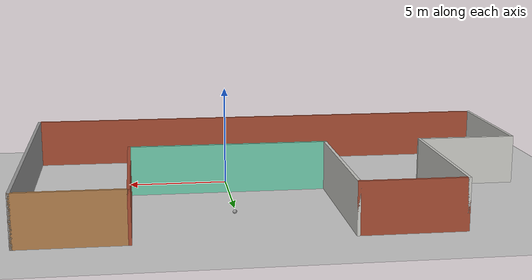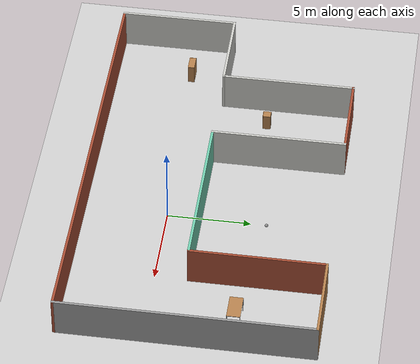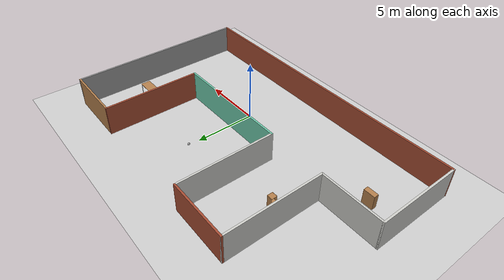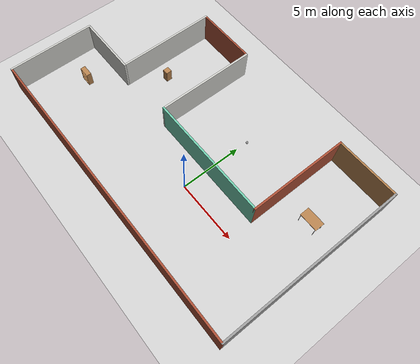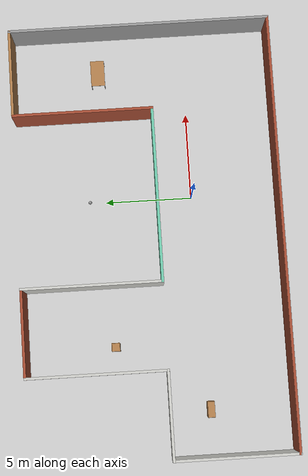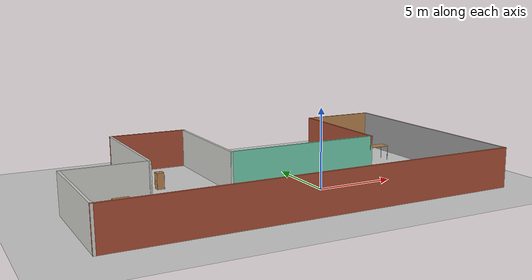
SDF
<sdf version="1.6">
 <world name="default">
  <model name="ground_plane">
   <static>1</static>
   <link name="link">
    <collision name="collision">
     <geometry><plane><normal>0 0 1</normal><size>100 100</size></plane></geometry>
     <surface>
      <contact><collide_bitmask>65535</collide_bitmask></contact>
      <friction><ode><mu>100</mu><mu2>50</mu2></ode></friction>
     </surface>
    </collision>
    <visual name="visual">
     <cast_shadows>0</cast_shadows>
     <geometry><plane><normal>0 0 1</normal><size>100 100</size></plane></geometry>
     <material>
      <script><uri>file://media/materials/scripts/gazebo.material</uri><name>Gazebo/Grey</name></script>
     </material>
    </visual>
   </link>
  </model>
  <light name="sun" type="directional">
   <pose>0 0 10 0 -0 0</pose>
   <diffuse>0.8 0.8 0.8 1</diffuse>
   <specular>0.2 0.2 0.2 1</specular>
   <attenuation>
    <range>1000</range>
    <constant>0.9</constant>
    <linear>0.01</linear>
    <quadratic>0.001</quadratic>
   </attenuation>
   <direction>-0.5 0.1 -0.9</direction>
  </light>
  <gravity>0 0 -9.8</gravity>
  <magnetic_field>6e-06 2.3e-05 -4.2e-05</magnetic_field>
  <atmosphere type="adiabatic"/>
  <physics name="default_physics" default="0" type="ode">
   <max_step_size>0.001</max_step_size>
   <real_time_factor>1</real_time_factor>
   <real_time_update_rate>1000</real_time_update_rate>
  </physics>
  <scene><ambient>0.4 0.4 0.4 1</ambient><background>0.7 0.7 0.7 1</background><shadows>1</shadows></scene>
  <spherical_coordinates>
   <surface_model>EARTH_WGS84</surface_model>
   <latitude_deg>0</latitude_deg>
   <longitude_deg>0</longitude_deg>
   <elevation>0</elevation>
   <heading_deg>0</heading_deg>
  </spherical_coordinates>
  <model name="myworld">
   <pose>-2.5 2.5 0 0 -0 0</pose>
   <link name="Wall_0">
    <collision name="Wall_0_Collision">
     <geometry><box><size>5.15 0.15 2.5</size></box></geometry>
     <pose>0 0 1.25 0 -0 0</pose>
    </collision>
    <visual name="Wall_0_Visual">
     <pose>0 0 1.25 0 -0 0</pose>
     <geometry><box><size>5.15 0.15 2.5</size></box></geometry>
     <material>
      <script><uri>file://media/materials/scripts/gazebo.material</uri><name>Gazebo/Bricks</name></script>
      <ambient>0.760784 0.662745 0.627451 1</ambient>
     </material>
     <meta><layer>0</layer></meta>
    </visual>
    <pose>-5 7.5 0 0 -0 0</pose>
   </link>
   <link name="Wall_10">
    <collision name="Wall_10_Collision">
     <geometry><box><size>15.15 0.15 2.5</size></box></geometry>
     <pose>0 0 1.25 0 -0 0</pose>
    </collision>
    <visual name="Wall_10_Visual">
     <pose>0 0 1.25 0 -0 0</pose>
     <geometry><box><size>15.15 0.15 2.5</size></box></geometry>
     <material>
      <script><uri>file://media/materials/scripts/gazebo.material</uri><name>Gazebo/Grey</name></script>
      <ambient>1 1 1 1</ambient>
     </material>
     <meta><layer>0</layer></meta>
    </visual>
    <pose>12.5 0 0 0 0 -1.5708</pose>
   </link>
   <link name="Wall_12">
    <collision name="Wall_12_Collision">
     <geometry><box><size>25.15 0.15 2.5</size></box></geometry>
     <pose>0 0 1.25 0 -0 0</pose>
    </collision>
    <visual name="Wall_12_Visual">
     <pose>0 0 1.25 0 -0 0</pose>
     <geometry><box><size>25.15 0.15 2.5</size></box></geometry>
     <material>
      <script><uri>file://media/materials/scripts/gazebo.material</uri><name>Gazebo/Bricks</name></script>
      <ambient>0.996078 0.47451 0.0196078 1</ambient>
     </material>
     <meta><layer>0</layer></meta>
    </visual>
    <pose>0 -7.5 0 0 -0 3.14159</pose>
   </link>
   <link name="Wall_14">
    <collision name="Wall_14_Collision">
     <geometry><box><size>7.15 0.15 2.5</size></box></geometry>
     <pose>0 0 1.25 0 -0 0</pose>
    </collision>
    <visual name="Wall_14_Visual">
     <pose>0 0 1.25 0 -0 0</pose>
     <geometry><box><size>7.15 0.15 2.5</size></box></geometry>
     <material>
      <script><uri>file://media/materials/scripts/gazebo.material</uri><name>Gazebo/CeilingTiled</name></script>
      <ambient>0.921569 0.807843 0.615686 1</ambient>
     </material>
     <meta><layer>0</layer></meta>
    </visual>
    <pose>-12.5 -4 0 0 -0 1.5708</pose>
   </link>
   <link name="Wall_16">
    <collision name="Wall_16_Collision">
     <geometry><box><size>5.15 0.15 2.5</size></box></geometry>
     <pose>0 0 1.25 0 -0 0</pose>
    </collision>
    <visual name="Wall_16_Visual">
     <pose>0 0 1.25 0 -0 0</pose>
     <geometry><box><size>5.15 0.15 2.5</size></box></geometry>
     <material>
      <script><uri>file://media/materials/scripts/gazebo.material</uri><name>Gazebo/CeilingTiled</name></script>
      <ambient>1 0.764706 0.305882 1</ambient>
     </material>
     <meta><layer>0</layer></meta>
    </visual>
    <pose>-10 -0.5 0 0 -0 0</pose>
   </link>
   <link name="Wall_18">
    <collision name="Wall_18_Collision">
     <geometry><box><size>8.15 0.15 2.5</size></box></geometry>
     <pose>0 0 1.25 0 -0 0</pose>
    </collision>
    <visual name="Wall_18_Visual">
     <pose>0 0 1.25 0 -0 0</pose>
     <geometry><box><size>8.15 0.15 2.5</size></box></geometry>
     <material>
      <script><uri>file://media/materials/scripts/gazebo.material</uri><name>Gazebo/CeilingTiled</name></script>
      <ambient>0.435294 0.796078 0.67451 1</ambient>
     </material>
     <meta><layer>0</layer></meta>
    </visual>
    <pose>-7.5 3.5 0 0 0 -1.5708</pose>
   </link>
   <link name="Wall_2">
    <collision name="Wall_2_Collision">
     <geometry><box><size>8.15 0.15 2.5</size></box></geometry>
     <pose>0 0 1.25 0 -0 0</pose>
    </collision>
    <visual name="Wall_2_Visual">
     <pose>0 0 1.25 0 -0 0</pose>
     <geometry><box><size>8.15 0.15 2.5</size></box></geometry>
     <material>
      <script><uri>file://media/materials/scripts/gazebo.material</uri><name>Gazebo/CeilingTiled</name></script>
      <ambient>0.996078 0.47451 0.0196078 1</ambient>
     </material>
     <meta><layer>0</layer></meta>
    </visual>
    <pose>-2.5 3.5 0 0 0 -1.5708</pose>
   </link>
   <link name="Wall_4">
    <collision name="Wall_4_Collision">
     <geometry><box><size>10.15 0.15 2.5</size></box></geometry>
     <pose>0 0 1.25 0 -0 0</pose>
    </collision>
    <visual name="Wall_4_Visual">
     <pose>0 0 1.25 0 -0 0</pose>
     <geometry><box><size>10.15 0.15 2.5</size></box></geometry>
     <material>
      <script><uri>file://media/materials/scripts/gazebo.material</uri><name>Gazebo/Grey</name></script>
      <ambient>0.435294 0.796078 0.67451 1</ambient>
     </material>
     <meta><layer>0</layer></meta>
    </visual>
    <pose>2.5 -0.5 0 0 -0 0</pose>
   </link>
   <link name="Wall_6">
    <collision name="Wall_6_Collision">
     <geometry><box><size>8.15 0.15 2.5</size></box></geometry>
     <pose>0 0 1.25 0 -0 0</pose>
    </collision>
    <visual name="Wall_6_Visual">
     <pose>0 0 1.25 0 -0 0</pose>
     <geometry><box><size>8.15 0.15 2.5</size></box></geometry>
     <material>
      <script><uri>file://media/materials/scripts/gazebo.material</uri><name>Gazebo/Bricks</name></script>
      <ambient>1 1 1 1</ambient>
     </material>
     <meta><layer>0</layer></meta>
    </visual>
    <pose>7.5 3.5 0 0 -0 1.5708</pose>
   </link>
   <link name="Wall_8">
    <collision name="Wall_8_Collision">
     <geometry><box><size>5.15 0.15 2.5</size></box></geometry>
     <pose>0 0 1.25 0 -0 0</pose>
    </collision>
    <visual name="Wall_8_Visual">
     <pose>0 0 1.25 0 -0 0</pose>
     <geometry><box><size>5.15 0.15 2.5</size></box></geometry>
     <material>
      <script><uri>file://media/materials/scripts/gazebo.material</uri><name>Gazebo/Wood</name></script>
      <ambient>1 1 1 1</ambient>
     </material>
     <meta><layer>0</layer></meta>
    </visual>
    <pose>10 7.5 0 0 -0 0</pose>
   </link>
   <static>1</static>
  </model>
  <model name="my_ball">
   <link name="link_0">
    <inertial>
     <mass>1</mass>
     <inertia><ixx>0.1</ixx><ixy>0</ixy><ixz>0</ixz><iyy>0.1</iyy><iyz>0</iyz><izz>0.1</izz></inertia>
    </inertial>
    <visual name="visual">
     <geometry><sphere><radius>0.1</radius></sphere></geometry>
     <material>
      <lighting>1</lighting>
      <script><uri>file://media/materials/scripts/gazebo.material</uri><name>Gazebo/Grey</name></script>
      <shader type="pixel"><normal_map>__default__</normal_map></shader>
      <ambient>1 1 1 1</ambient>
      <diffuse>1 1 1 1</diffuse>
      <specular>1 1 1 1</specular>
      <emissive>1 1 1 1</emissive>
     </material>
    </visual>
    <collision name="collision">
     <geometry><sphere><radius>0.1</radius></sphere></geometry>
     <surface>
      <friction>
       <ode><mu>1</mu><mu2>1</mu2><fdir1>0 0 0</fdir1><slip1>0</slip1><slip2>0</slip2></ode>
       <torsional>
        <coefficient>1</coefficient>
        <patch_radius>0</patch_radius>
        <surface_radius>0</surface_radius>
        <use_patch_radius>1</use_patch_radius>
        <ode><slip>0</slip></ode>
       </torsional>
      </friction>
      <bounce><restitution_coefficient>0</restitution_coefficient><threshold>1e+06</threshold></bounce>
      <contact>
       <collide_without_contact>0</collide_without_contact>
       <collide_without_contact_bitmask>1</collide_without_contact_bitmask>
       <collide_bitmask>1</collide_bitmask>
       <ode>
        <soft_cfm>0</soft_cfm>
        <soft_erp>0.2</soft_erp>
        <kp>1e+13</kp>
        <kd>1</kd>
        <max_vel>0.01</max_vel>
        <min_depth>0</min_depth>
       </ode>
       <bullet>
        <split_impulse>1</split_impulse>
        <split_impulse_penetration_threshold>-0.01</split_impulse_penetration_threshold>
        <soft_cfm>0</soft_cfm>
        <soft_erp>0.2</soft_erp>
        <kp>1e+13</kp>
        <kd>1</kd>
       </bullet>
      </contact>
     </surface>
    </collision>
   </link>
   <static>0</static>
   <pose>0.075523 5.93341 0.1 0 -0 0</pose>
  </model>
  <model name="cabinet">
   <static>1</static>
   <link name="cabinet_bottom_plate">
    <inertial>
     <pose>0 0 -1 0 -0 0</pose>
     <inertia><ixx>2.05</ixx><ixy>0</ixy><ixz>0</ixz><iyy>2.05</iyy><iyz>0</iyz><izz>2.05</izz></inertia>
     <mass>25</mass>
    </inertial>
    <collision name="cabinet_bottom_plate_geom">
     <pose>0 0 0.01 0 -0 0</pose>
     <geometry><box><size>0.45 0.45 0.02</size></box></geometry>
    </collision>
    <visual name="cabinet_bottom_plate_geom_visual">
     <pose>0 0 0.01 0 -0 0</pose>
     <geometry><box><size>0.45 0.45 0.02</size></box></geometry>
     <material>
      <script><uri>file://media/materials/scripts/gazebo.material</uri><name>Gazebo/Wood</name></script>
     </material>
    </visual>
    <collision name="cabinet_bottom_plate_geom_cabinet_back_plate">
     <pose>0.235 0 0.51 0 -0 0</pose>
     <geometry><box><size>0.02 0.45 1.02</size></box></geometry>
    </collision>
    <visual name="cabinet_bottom_plate_geom_cabinet_back_plate_visual">
     <pose>0.235 0 0.51 0 -0 0</pose>
     <geometry><box><size>0.02 0.45 1.02</size></box></geometry>
     <material>
      <script><uri>file://media/materials/scripts/gazebo.material</uri><name>Gazebo/Wood</name></script>
     </material>
    </visual>
    <collision name="cabinet_bottom_plate_geom_cabinet_left_plate">
     <pose>0 0.235 0.51 0 -0 0</pose>
     <geometry><box><size>0.45 0.02 1.02</size></box></geometry>
    </collision>
    <visual name="cabinet_bottom_plate_geom_cabinet_left_plate_visual">
     <pose>0 0.235 0.51 0 -0 0</pose>
     <geometry><box><size>0.45 0.02 1.02</size></box></geometry>
     <material>
      <script><uri>file://media/materials/scripts/gazebo.material</uri><name>Gazebo/Wood</name></script>
     </material>
    </visual>
    <collision name="cabinet_bottom_plate_geom_cabinet_middle_plate">
     <pose>0 0 0.51 0 -0 0</pose>
     <geometry><box><size>0.45 0.45 0.02</size></box></geometry>
    </collision>
    <visual name="cabinet_bottom_plate_geom_cabinet_middle_plate_visual">
     <pose>0 0 0.51 0 -0 0</pose>
     <geometry><box><size>0.45 0.45 0.02</size></box></geometry>
     <material>
      <script><uri>file://media/materials/scripts/gazebo.material</uri><name>Gazebo/Wood</name></script>
     </material>
    </visual>
    <collision name="cabinet_bottom_plate_geom_cabinet_right_plate">
     <pose>0 -0.235 0.51 0 -0 0</pose>
     <geometry><box><size>0.45 0.02 1.02</size></box></geometry>
    </collision>
    <visual name="cabinet_bottom_plate_geom_cabinet_right_plate_visual">
     <pose>0 -0.235 0.51 0 -0 0</pose>
     <geometry><box><size>0.45 0.02 1.02</size></box></geometry>
     <material>
      <script><uri>file://media/materials/scripts/gazebo.material</uri><name>Gazebo/Wood</name></script>
     </material>
    </visual>
    <collision name="cabinet_bottom_plate_geom_cabinet_top_plate">
     <pose>0 0 1.01 0 -0 0</pose>
     <geometry><box><size>0.45 0.45 0.02</size></box></geometry>
    </collision>
    <visual name="cabinet_bottom_plate_geom_cabinet_top_plate_visual">
     <pose>0 0 1.01 0 -0 0</pose>
     <geometry><box><size>0.45 0.45 0.02</size></box></geometry>
     <material>
      <script><uri>file://media/materials/scripts/gazebo.material</uri><name>Gazebo/Wood</name></script>
     </material>
    </visual>
   </link>
   <pose>-8.51632 4.88852 0 0 -0 0</pose>
  </model>
  <model name="bookshelf">
   <static>1</static>
   <link name="link">
    <inertial><mass>1</mass></inertial>
    <collision name="back">
     <pose>0 0.005 0.6 0 -0 0</pose>
     <geometry><box><size>0.9 0.01 1.2</size></box></geometry>
    </collision>
    <visual name="visual1">
     <pose>0 0.005 0.6 0 -0 0</pose>
     <geometry><box><size>0.9 0.01 1.2</size></box></geometry>
     <material>
      <script><uri>file://media/materials/scripts/gazebo.material</uri><name>Gazebo/Wood</name></script>
     </material>
    </visual>
    <collision name="left_side">
     <pose>0.45 -0.195 0.6 0 -0 0</pose>
     <geometry><box><size>0.02 0.4 1.2</size></box></geometry>
    </collision>
    <visual name="visual2">
     <pose>0.45 -0.195 0.6 0 -0 0</pose>
     <geometry><box><size>0.02 0.4 1.2</size></box></geometry>
     <material>
      <script><uri>file://media/materials/scripts/gazebo.material</uri><name>Gazebo/Wood</name></script>
     </material>
    </visual>
    <collision name="right_side">
     <pose>-0.45 -0.195 0.6 0 -0 0</pose>
     <geometry><box><size>0.02 0.4 1.2</size></box></geometry>
    </collision>
    <visual name="visual3">
     <pose>-0.45 -0.195 0.6 0 -0 0</pose>
     <geometry><box><size>0.02 0.4 1.2</size></box></geometry>
     <material>
      <script><uri>file://media/materials/scripts/gazebo.material</uri><name>Gazebo/Wood</name></script>
     </material>
    </visual>
    <collision name="bottom">
     <pose>0 -0.195 0.03 0 -0 0</pose>
     <geometry><box><size>0.88 0.4 0.06</size></box></geometry>
    </collision>
    <visual name="visual4">
     <pose>0 -0.195 0.03 0 -0 0</pose>
     <geometry><box><size>0.88 0.4 0.06</size></box></geometry>
     <material>
      <script><uri>file://media/materials/scripts/gazebo.material</uri><name>Gazebo/Wood</name></script>
     </material>
    </visual>
    <collision name="top">
     <pose>0 -0.195 1.19 0 -0 0</pose>
     <geometry><box><size>0.88 0.4 0.02</size></box></geometry>
    </collision>
    <visual name="visual5">
     <pose>0 -0.195 1.19 0 -0 0</pose>
     <geometry><box><size>0.88 0.4 0.02</size></box></geometry>
     <material>
      <script><uri>file://media/materials/scripts/gazebo.material</uri><name>Gazebo/Wood</name></script>
     </material>
    </visual>
    <collision name="low_shelf">
     <pose>0 -0.195 0.43 0 -0 0</pose>
     <geometry><box><size>0.88 0.4 0.02</size></box></geometry>
    </collision>
    <visual name="visual6">
     <pose>0 -0.195 0.43 0 -0 0</pose>
     <geometry><box><size>0.88 0.4 0.02</size></box></geometry>
     <material>
      <script><uri>file://media/materials/scripts/gazebo.material</uri><name>Gazebo/Wood</name></script>
     </material>
    </visual>
    <collision name="high_shelf">
     <pose>0 -0.195 0.8 0 -0 0</pose>
     <geometry><box><size>0.88 0.4 0.02</size></box></geometry>
    </collision>
    <visual name="visual7">
     <pose>0 -0.195 0.8 0 -0 0</pose>
     <geometry><box><size>0.88 0.4 0.02</size></box></geometry>
     <material>
      <script><uri>file://media/materials/scripts/gazebo.material</uri><name>Gazebo/Wood</name></script>
     </material>
    </visual>
   </link>
   <pose>-12.3482 -0.123287 0 0 -0 0</pose>
  </model>
  <model name="table">
   <static>1</static>
   <link name="link">
    <collision name="surface">
     <pose>0 0 1 0 -0 0</pose>
     <geometry><box><size>1.5 0.8 0.03</size></box></geometry>
     <surface><friction><ode><mu>0.6</mu><mu2>0.6</mu2></ode></friction></surface>
    </collision>
    <visual name="visual1">
     <pose>0 0 1 0 -0 0</pose>
     <geometry><box><size>1.5 0.8 0.03</size></box></geometry>
     <material>
      <script><uri>file://media/materials/scripts/gazebo.material</uri><name>Gazebo/Wood</name></script>
     </material>
    </visual>
    <collision name="front_left_leg">
     <pose>0.68 0.38 0.5 0 -0 0</pose>
     <geometry><cylinder><radius>0.02</radius><length>1</length></cylinder></geometry>
    </collision>
    <visual name="front_left_leg">
     <pose>0.68 0.38 0.5 0 -0 0</pose>
     <geometry><cylinder><radius>0.02</radius><length>1</length></cylinder></geometry>
     <material>
      <script><uri>file://media/materials/scripts/gazebo.material</uri><name>Gazebo/Grey</name></script>
     </material>
    </visual>
    <collision name="front_right_leg">
     <pose>0.68 -0.38 0.5 0 -0 0</pose>
     <geometry><cylinder><radius>0.02</radius><length>1</length></cylinder></geometry>
    </collision>
    <visual name="front_right_leg">
     <pose>0.68 -0.38 0.5 0 -0 0</pose>
     <geometry><cylinder><radius>0.02</radius><length>1</length></cylinder></geometry>
     <material>
      <script><uri>file://media/materials/scripts/gazebo.material</uri><name>Gazebo/Grey</name></script>
     </material>
    </visual>
    <collision name="back_right_leg">
     <pose>-0.68 -0.38 0.5 0 -0 0</pose>
     <geometry><cylinder><radius>0.02</radius><length>1</length></cylinder></geometry>
    </collision>
    <visual name="back_right_leg">
     <pose>-0.68 -0.38 0.5 0 -0 0</pose>
     <geometry><cylinder><radius>0.02</radius><length>1</length></cylinder></geometry>
     <material>
      <script><uri>file://media/materials/scripts/gazebo.material</uri><name>Gazebo/Grey</name></script>
     </material>
    </visual>
    <collision name="back_left_leg">
     <pose>-0.68 0.38 0.5 0 -0 0</pose>
     <geometry><cylinder><radius>0.02</radius><length>1</length></cylinder></geometry>
    </collision>
    <visual name="back_left_leg">
     <pose>-0.68 0.38 0.5 0 -0 0</pose>
     <geometry><cylinder><radius>0.02</radius><length>1</length></cylinder></geometry>
     <material>
      <script><uri>file://media/materials/scripts/gazebo.material</uri><name>Gazebo/Grey</name></script>
     </material>
    </visual>
   </link>
   <pose>7.62169 5.04842 0 0 -0 0</pose>
  </model>
 </world>
</sdf>
